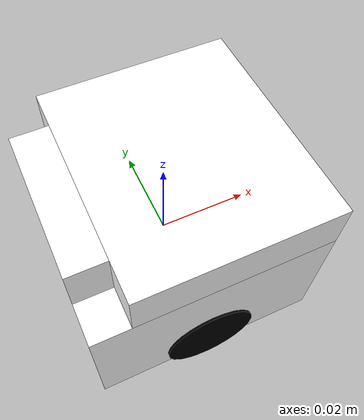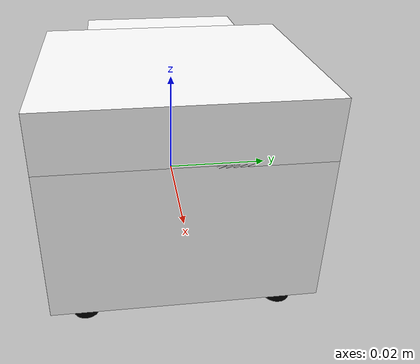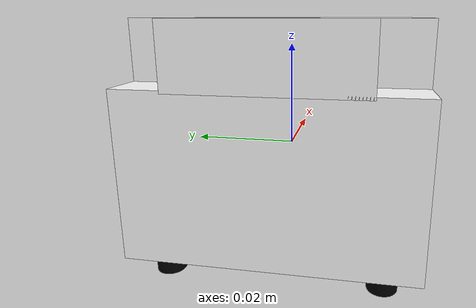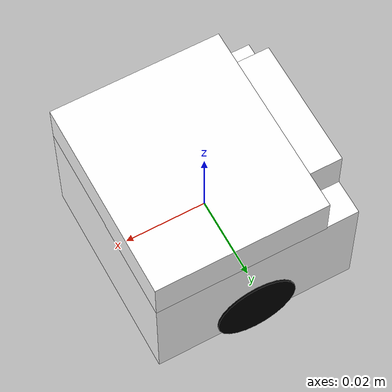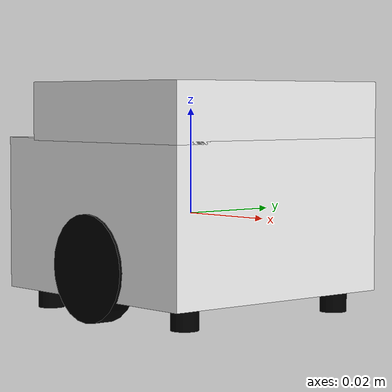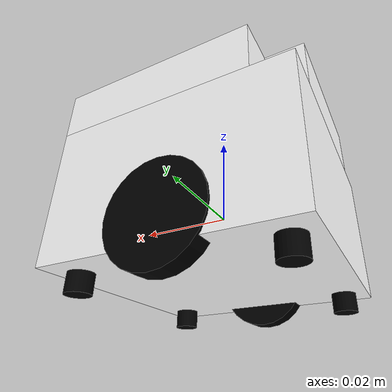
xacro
<?xml version="1.0"?>
<robot xmlns:xacro="https://www.ros.org/wiki/xacro" name="lurebot">

    <xacro:include filename="$(find bobi_models)/urdf/utils/inertia.xacro" />
    <xacro:include filename="$(find bobi_models)/urdf/utils/materials.xacro" />
    <xacro:include filename="$(find bobi_models)/urdf/utils/custom_sensors.xacro" />
    <xacro:include filename="$(find bobi_models)/urdf/lurebot_simple.gazebo" />

    <xacro:property name="wheel_radius" value="0.01"/>
    <xacro:property name="wheel_len" value="0.004"/>
    <xacro:arg name="mass" default="0.093"/>
    <xacro:property name="mass_p" value="$(arg mass)"/>
    <xacro:property name="body_mass" value="${mass_p * 0.90}"/>
    <xacro:property name="wheel_mass" value="${mass_p * 0.05}"/>

    <joint name="left_wheel_joint" type="continuous">
        <parent link="base_link"/>
        <child link="left_wheel_link"/>
        <axis rpy="0 0 0" xyz="0 1 0"/>
        <origin xyz="0 0.023 -0.009"/>
    </joint>

    <joint name="right_wheel_joint" type="continuous">
        <parent link="base_link"/>
        <child link="right_wheel_link"/>
        <axis rpy="0 0 0" xyz="0 1 0"/>
        <origin xyz="0 -0.023 -0.009"/>
    </joint>

    <joint name="support_1_joint" type="fixed">
        <parent link="base_link"/>
        <child link="support_1_link"/>
        <axis xyz="0 1 0"/>
        <origin rpy="0 0 0" xyz="0.020 0.0185 -0.0165"/>
        <joint_properties damping="0.0" friction="0.0" />

        <calibration rising="0.0"/>
        <dynamics damping="0.0" friction="0.0"/>
    </joint>

    <joint name="support_2_joint" type="fixed">
        <parent link="base_link"/>
        <child link="support_2_link"/>
        <axis xyz="0 1 0"/>
        <origin rpy="0 0 0" xyz="0.020 -0.0185 -0.0165"/>
        <joint_properties damping="0.0" friction="0.0" />

        <calibration rising="0.0"/>
        <dynamics damping="0.0" friction="0.0"/>
    </joint>

    <joint name="support_3_joint" type="fixed">
        <parent link="base_link"/>
        <child link="support_3_link"/>
        <axis xyz="0 1 0"/>
        <origin rpy="0 0 0" xyz="-0.020 0.0185 -0.0165"/>
        <joint_properties damping="0.0" friction="0.0" />

        <calibration rising="0.0"/>
        <dynamics damping="0.0" friction="0.0"/>
    </joint>

    <joint name="support_4_joint" type="fixed">
        <parent link="base_link"/>
        <child link="support_4_link"/>
        <axis xyz="0 1 0"/>
        <origin rpy="0 0 0" xyz="-0.020 -0.0185 -0.0165"/>
        <joint_properties damping="0.0" friction="0.0" />

        <calibration rising="0.0"/>
        <dynamics damping="0.0" friction="0.0"/>
    </joint>

    <link name="base_link">
        <visual>
            <origin xyz="0 0 0"/>
            <geometry>
                <box size="0.050 0.049 0.029"/>
            </geometry>
            <material name="white"/>
        </visual>
        <collision>
            <origin xyz="0 0 0"/>
            <geometry>
                <box size="0.050 0.049 0.029"/>
            </geometry>
            <material name="white"/>
        </collision>

        <visual>
            <origin xyz="0.004 0 0.0195"/>
            <geometry>
                <box size="0.042 0.049 0.011"/>
            </geometry>
            <material name="white"/>
        </visual>
        <collision>
            <origin xyz="0.004 0 0.0195"/>
            <geometry>
                <box size="0.042 0.049 0.011"/>
            </geometry>
            <material name="white"/>
        </collision>

        <visual>
            <origin xyz="-0.021 0 0.0195"/>
            <geometry>
                <box size="0.008 0.032 0.011"/>
            </geometry>
            <material name="white"/>
        </visual>
        <collision>
            <origin xyz="-0.021 0 0.0195"/>
            <geometry>
                <box size="0.008 0.032 0.011"/>
            </geometry>
            <material name="white"/>
        </collision>

        <inertial>
            <mass value="${body_mass}"/>
            <xacro:box_inertia mass="${body_mass}" x="0.11" y="0.112" z="0.045" />
        </inertial>
    </link>

    <link name="support_1_link">
        <visual>
            <origin xyz="0 0 0"/>
            <geometry>
                <cylinder radius="0.00255" length="0.004"/>
            </geometry>
            <material name="black"/>
        </visual>
        <collision>
            <origin xyz="0 0 0"/>
            <geometry>
                <cylinder radius="0.00255" length="0.004"/>
            </geometry>
            <material name="black"/>
        </collision>
        <inertial>
            <mass value="0.001"/>
            <xacro:cylinder_inertia mass="0.001" r="0.0255" h="0.004" />
        </inertial>
    </link>

    <link name="support_2_link">
        <visual>
            <origin xyz="0 0 0"/>
            <geometry>
                <cylinder radius="0.00255" length="0.004"/>
            </geometry>
            <material name="black"/>
        </visual>
        <collision>
            <origin xyz="0 0 0"/>
            <geometry>
                <cylinder radius="0.00255" length="0.004"/>
            </geometry>
            <material name="black"/>
        </collision>
        <inertial>
            <mass value="0.001"/>
            <xacro:cylinder_inertia mass="0.001" r="0.0255" h="0.004" />
        </inertial>
    </link>

    <link name="support_3_link">
        <visual>
            <origin xyz="0 0 0"/>
            <geometry>
                <cylinder radius="0.00255" length="0.004"/>
            </geometry>
            <material name="black"/>
        </visual>
        <collision>
            <origin xyz="0 0 0"/>
            <geometry>
                <cylinder radius="0.00255" length="0.004"/>
            </geometry>
            <material name="black"/>
        </collision>
        <inertial>
            <mass value="0.001"/>
            <xacro:cylinder_inertia mass="0.001" r="0.0255" h="0.004" />
        </inertial>
    </link>

    <link name="support_4_link">
        <visual>
            <origin xyz="0 0 0"/>
            <geometry>
                <cylinder radius="0.00255" length="0.004"/>
            </geometry>
            <material name="black"/>
        </visual>
        <collision>
            <origin xyz="0 0 0"/>
            <geometry>
                <cylinder radius="0.00255" length="0.004"/>
            </geometry>
            <material name="black"/>
        </collision>
        <inertial>
            <mass value="0.001"/>
            <xacro:cylinder_inertia mass="0.001" r="0.0255" h="0.004" />
        </inertial>
    </link>

    <link name="left_wheel_link">
        <visual>
            <origin xyz="0 0 0" rpy="1.5707 0 0"/>
            <geometry>
                <cylinder length="${wheel_len}" radius="${wheel_radius}"/>
            </geometry>
            <material name="black"/>
        </visual>
        <collision>
            <origin xyz="0 0 0" rpy="1.5707 0 0"/>
            <geometry>
                <cylinder radius="${wheel_radius}" length="${wheel_len}"/>
            </geometry>
        </collision>

        <inertial>
            <mass value="${wheel_mass}"/>
            <xacro:cylinder_inertia mass="${wheel_mass}" r="${wheel_radius}" h="${wheel_len}" />
        </inertial>
    </link>

    <link name="right_wheel_link">
        <visual>
            <origin xyz="0 0 0" rpy="1.5707 0 0"/>
            <geometry>
                <cylinder length="${wheel_len}" radius="${wheel_radius}"/>
            </geometry>
            <material name="black"/>
        </visual>
        <collision>
            <origin xyz="0 0 0" rpy="1.5707 0 0"/>
            <geometry>
                <cylinder radius="${wheel_radius}" length="${wheel_len}"/>
            </geometry>
        </collision>
        <inertial>
            <mass value="${wheel_mass}"/>
            <xacro:cylinder_inertia mass="${wheel_mass}" r="${wheel_radius}" h="${wheel_len}" />
        </inertial>
    </link>

</robot>

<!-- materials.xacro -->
<robot>
	<material name="white">
		<color rgba="1 1 1 1" />
	</material>
	<material name="black">
		<color rgba="0 0 0 1" />
	</material>
	<material name="blue">
		<color rgba="0 0 0.8 1" />
	</material>
	<material name="yellow">
		<color rgba="1 1 0 1" />
	</material>
	<material name="green">
		<color rgba="0 1 0 1" />
	</material>
	<material name="brown">
		<color rgba="${153/255} ${102/255} ${51/255} 1.0"/>
	</material>
</robot>
